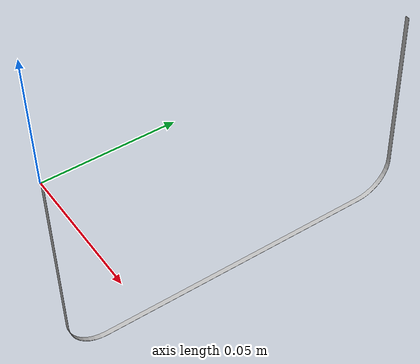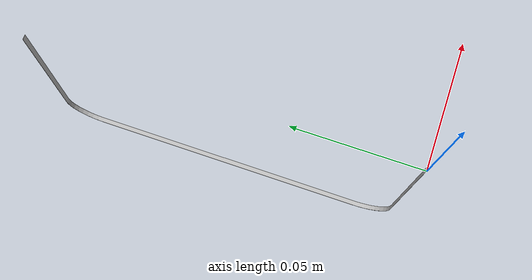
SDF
<?xml version="1.0" ?>
<sdf version="1.4">
  <model name="beam_weld">
    <static>true</static>
    <link name="link">
      <inertial>
        <mass>1000</mass>
      </inertial>
      <collision name="collision">
        <geometry>
          <mesh>
            <uri>model://beam_weld/meshes/beam_weld.stl</uri>
          </mesh>
        </geometry>
      </collision>
      <visual name="visual">
        <transparency>0.0</transparency>
        <geometry>
          <mesh>
            <uri>model://beam_weld/meshes/beam_weld.stl</uri>
          </mesh>
        </geometry>
      </visual>
    </link>
  </model>
</sdf>
